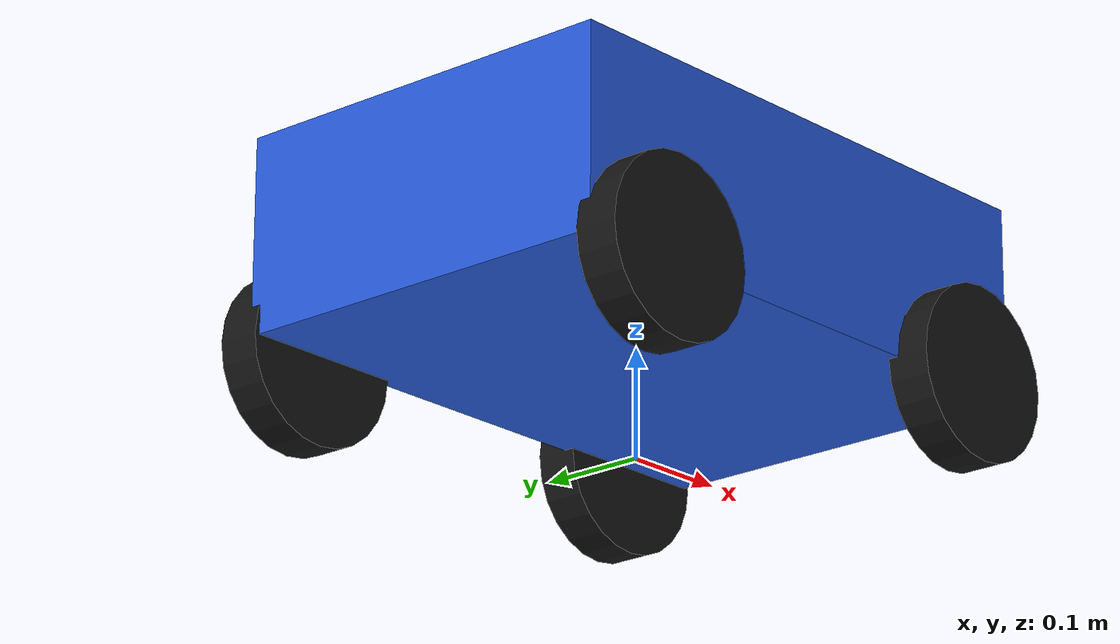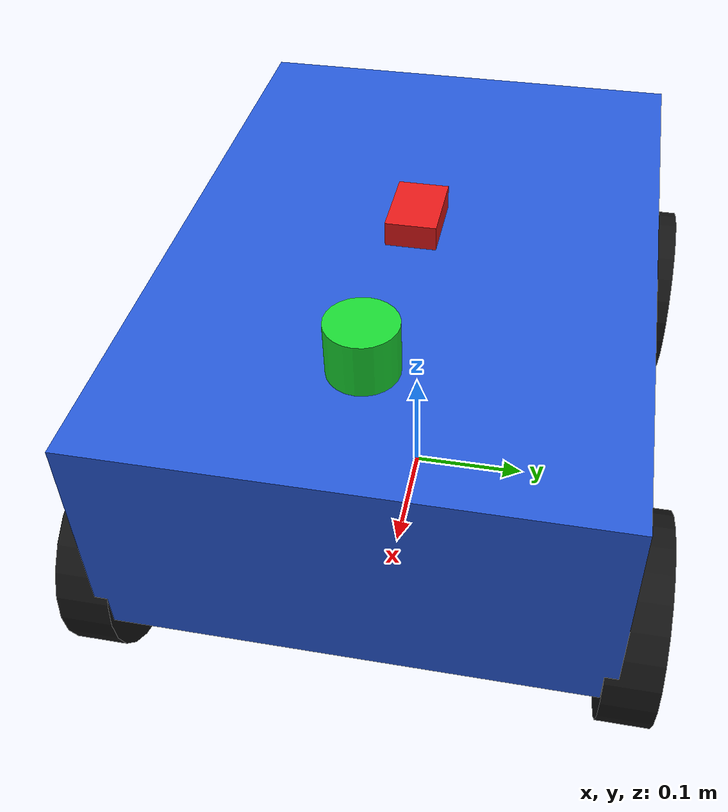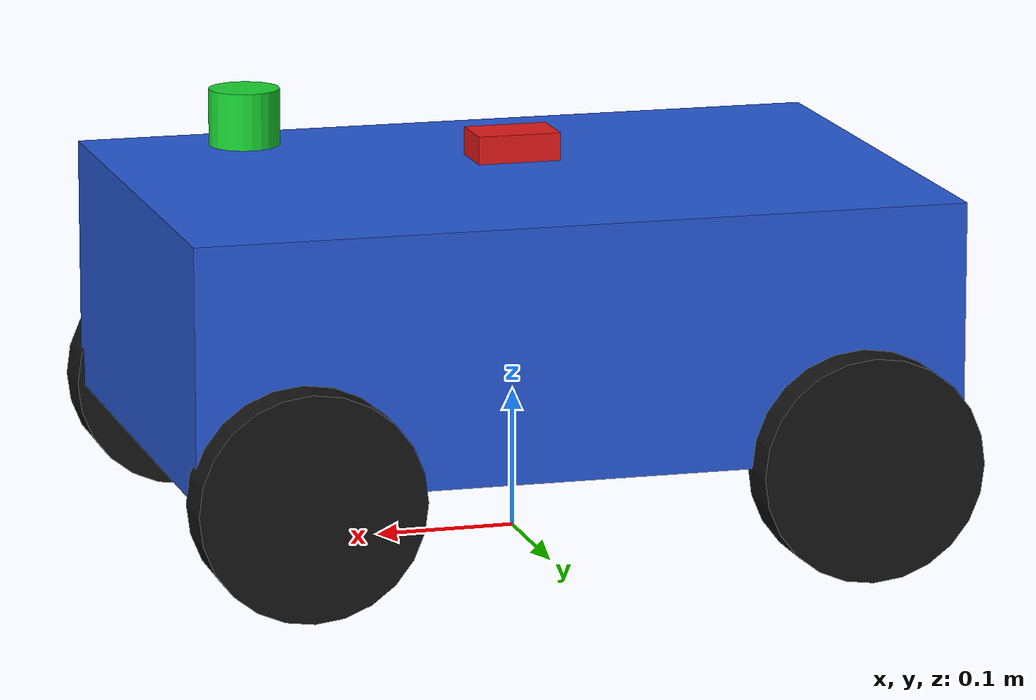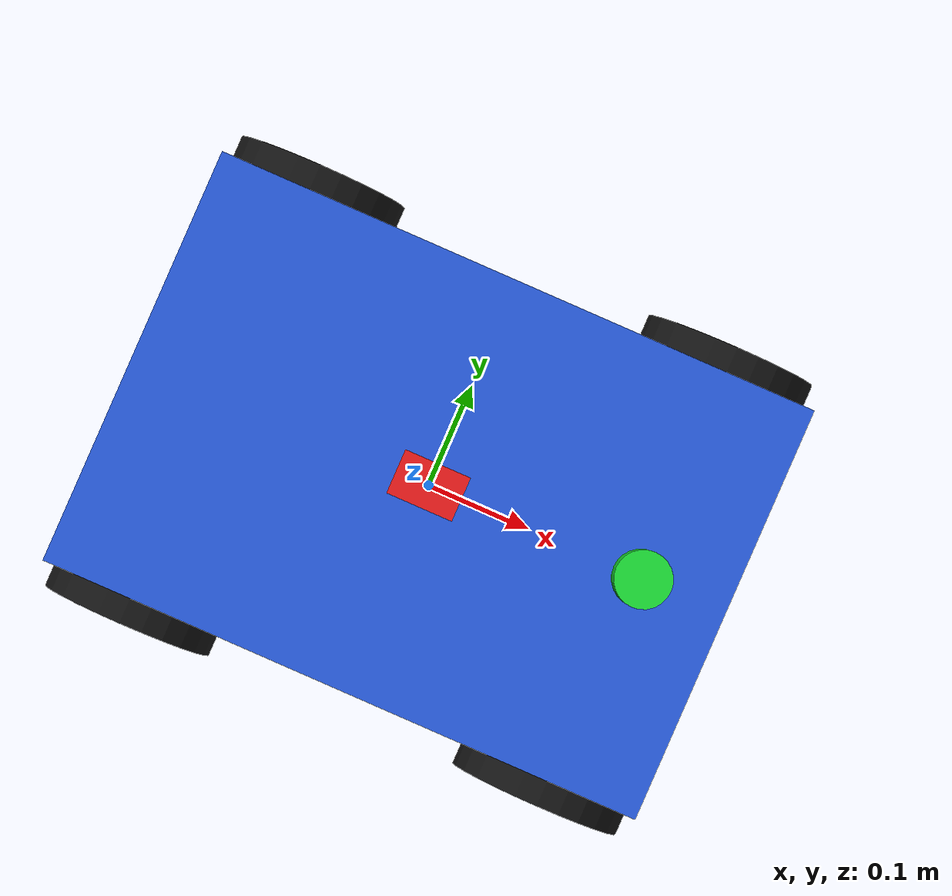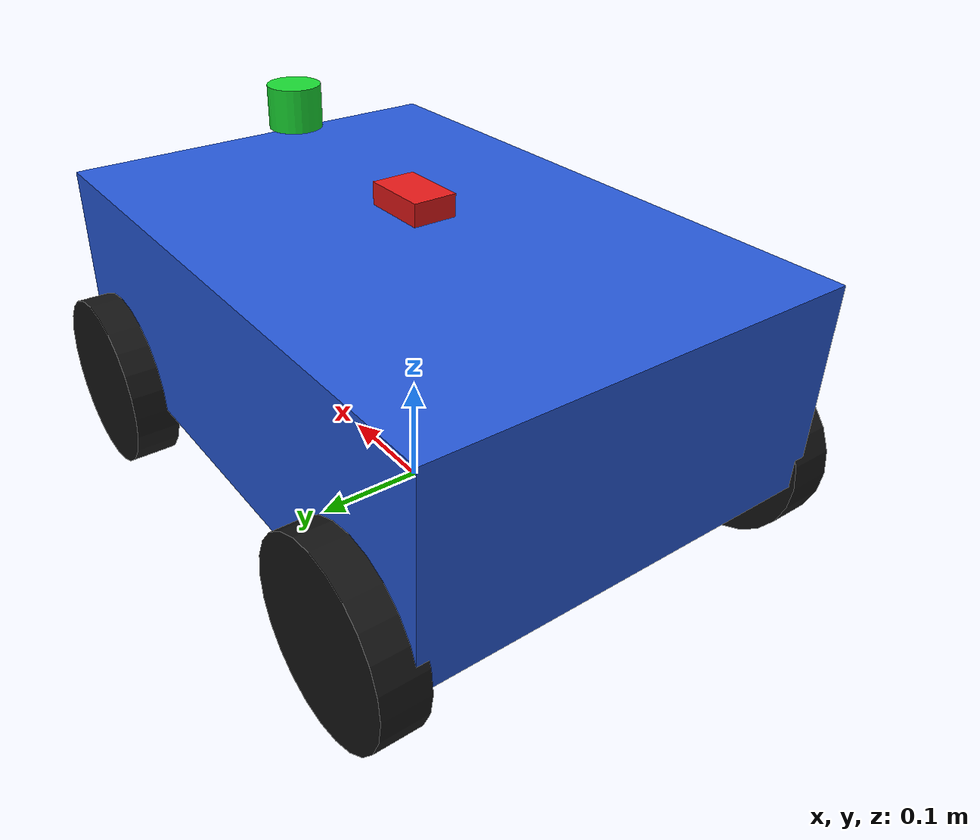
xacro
<?xml version="1.0"?>
<robot xmlns:xacro="http://www.ros.org/wiki/xacro" name="vehicle">

  <xacro:property name="base_length" value="0.55"/>
  <xacro:property name="base_width" value="0.38"/>
  <xacro:property name="base_height" value="0.18"/>
  <xacro:property name="wheel_radius" value="0.08"/>
  <xacro:property name="wheel_width" value="0.04"/>
  <xacro:property name="wheel_y" value="0.20"/>
  <xacro:property name="wheel_x_rear" value="-0.20"/>
  <xacro:property name="wheel_x_front" value="0.20"/>
  <xacro:property name="wheel_z" value="-0.09"/>

  <link name="base_footprint"/>

  <joint name="base_footprint_joint" type="fixed">
    <parent link="base_footprint"/>
    <child link="base_link"/>
    <origin xyz="0 0 ${wheel_radius + base_height / 2.0}" rpy="0 0 0"/>
  </joint>

  <link name="base_link">
    <visual>
      <geometry>
        <box size="${base_length} ${base_width} ${base_height}"/>
      </geometry>
      <material name="blue">
        <color rgba="0.15 0.35 0.85 1"/>
      </material>
    </visual>
    <collision>
      <geometry>
        <box size="${base_length} ${base_width} ${base_height}"/>
      </geometry>
    </collision>
    <inertial>
      <mass value="12"/>
      <inertia ixx="0.12" ixy="0" ixz="0" iyy="0.18" iyz="0" izz="0.22"/>
    </inertial>
  </link>

  <!-- IMU: kırmızı kutu, gövde merkezinde -->
  <link name="imu_link">
    <visual>
      <geometry>
        <box size="0.06 0.04 0.02"/>
      </geometry>
      <material name="red">
        <color rgba="0.9 0.1 0.1 1"/>
      </material>
    </visual>
    <collision>
      <geometry>
        <box size="0.06 0.04 0.02"/>
      </geometry>
    </collision>
    <inertial>
      <mass value="0.05"/>
      <inertia ixx="1e-5" ixy="0" ixz="0" iyy="1e-5" iyz="0" izz="1e-5"/>
    </inertial>
  </link>

  <joint name="imu_joint" type="fixed">
    <parent link="base_link"/>
    <child link="imu_link"/>
    <origin xyz="0 0 ${base_height / 2.0 + 0.02}" rpy="0 0 0"/>
  </joint>

  <!-- GPS anteni: yeşil kutu, tavan önünde -->
  <link name="gps_link">
    <visual>
      <geometry>
        <cylinder radius="0.025" length="0.04"/>
      </geometry>
      <material name="green">
        <color rgba="0.1 0.85 0.2 1"/>
      </material>
    </visual>
    <collision>
      <geometry>
        <cylinder radius="0.025" length="0.04"/>
      </geometry>
    </collision>
    <inertial>
      <mass value="0.03"/>
      <inertia ixx="1e-5" ixy="0" ixz="0" iyy="1e-5" iyz="0" izz="1e-5"/>
    </inertial>
  </link>

  <joint name="gps_joint" type="fixed">
    <parent link="base_link"/>
    <child link="gps_link"/>
    <origin xyz="${base_length / 2.0 - 0.08} 0 ${base_height / 2.0 + 0.05}" rpy="0 0 0"/>
  </joint>

  <xacro:macro name="wheel_link" params="name">
    <link name="${name}">
      <visual>
        <geometry>
          <cylinder radius="${wheel_radius}" length="${wheel_width}"/>
        </geometry>
        <material name="black">
          <color rgba="0.08 0.08 0.08 1"/>
        </material>
      </visual>
      <collision>
        <geometry>
          <cylinder radius="${wheel_radius}" length="${wheel_width}"/>
        </geometry>
      </collision>
      <inertial>
        <mass value="0.8"/>
        <inertia ixx="0.008" ixy="0" ixz="0" iyy="0.008" iyz="0" izz="0.008"/>
      </inertial>
    </link>
  </xacro:macro>

  <xacro:wheel_link name="left_rear_wheel"/>
  <xacro:wheel_link name="right_rear_wheel"/>
  <xacro:wheel_link name="left_front_wheel"/>
  <xacro:wheel_link name="right_front_wheel"/>

  <joint name="left_rear_wheel_joint" type="continuous">
    <parent link="base_link"/>
    <child link="left_rear_wheel"/>
    <origin xyz="${wheel_x_rear} ${wheel_y} ${wheel_z}" rpy="-1.5708 0 0"/>
    <axis xyz="0 0 1"/>
  </joint>

  <joint name="right_rear_wheel_joint" type="continuous">
    <parent link="base_link"/>
    <child link="right_rear_wheel"/>
    <origin xyz="${wheel_x_rear} ${-wheel_y} ${wheel_z}" rpy="-1.5708 0 0"/>
    <axis xyz="0 0 1"/>
  </joint>

  <joint name="left_front_wheel_joint" type="continuous">
    <parent link="base_link"/>
    <child link="left_front_wheel"/>
    <origin xyz="${wheel_x_front} ${wheel_y} ${wheel_z}" rpy="-1.5708 0 0"/>
    <axis xyz="0 0 1"/>
    <mimic joint="left_rear_wheel_joint" multiplier="1" offset="0"/>
  </joint>

  <joint name="right_front_wheel_joint" type="continuous">
    <parent link="base_link"/>
    <child link="right_front_wheel"/>
    <origin xyz="${wheel_x_front} ${-wheel_y} ${wheel_z}" rpy="-1.5708 0 0"/>
    <axis xyz="0 0 1"/>
    <mimic joint="right_rear_wheel_joint" multiplier="1" offset="0"/>
  </joint>

  <gazebo reference="base_link">
    <material>Gazebo/Blue</material>
    <mu1>0.9</mu1>
    <mu2>0.9</mu2>
  </gazebo>

  <gazebo reference="left_rear_wheel">
    <mu1>1.2</mu1>
    <mu2>1.2</mu2>
  </gazebo>
  <gazebo reference="right_rear_wheel">
    <mu1>1.2</mu1>
    <mu2>1.2</mu2>
  </gazebo>
  <!-- Ön tekerlekler tahrikli değil; yüksek sürtünme aracı düz çizer. Kayarak dönsün. -->
  <gazebo reference="left_front_wheel">
    <mu1>0.01</mu1>
    <mu2>0.01</mu2>
    <slip1>1.0</slip1>
    <slip2>1.0</slip2>
  </gazebo>
  <gazebo reference="right_front_wheel">
    <mu1>0.01</mu1>
    <mu2>0.01</mu2>
    <slip1>1.0</slip1>
    <slip2>1.0</slip2>
  </gazebo>

  <gazebo reference="imu_link">
    <material>Gazebo/Red</material>
    <sensor name="imu_sensor" type="imu">
      <always_on>true</always_on>
      <update_rate>100</update_rate>
      <plugin filename="libgazebo_ros_imu_sensor.so" name="imu_plugin">
        <ros>
          <remapping>~/out:=imu</remapping>
        </ros>
        <frame_name>imu_link</frame_name>
        <initial_orientation_as_reference>false</initial_orientation_as_reference>
      </plugin>
    </sensor>
  </gazebo>

  <gazebo reference="gps_link">
    <material>Gazebo/Green</material>
  </gazebo>

  <!-- Arka tekerleklerden diff-drive (ön tekerlekler mimic ile döner) -->
  <gazebo>
    <plugin name="diff_drive" filename="libgazebo_ros_diff_drive.so">
      <ros></ros>
      <update_rate>50</update_rate>
      <left_joint>left_rear_wheel_joint</left_joint>
      <right_joint>right_rear_wheel_joint</right_joint>
      <wheel_separation>${2 * wheel_y}</wheel_separation>
      <wheel_diameter>${2 * wheel_radius}</wheel_diameter>
      <max_wheel_torque>30</max_wheel_torque>
      <max_wheel_acceleration>2.0</max_wheel_acceleration>
      <command_topic>cmd_vel</command_topic>
      <publish_odom>true</publish_odom>
      <publish_odom_tf>true</publish_odom_tf>
      <publish_wheel_tf>false</publish_wheel_tf>
      <odometry_topic>odom</odometry_topic>
      <odometry_frame>odom</odometry_frame>
      <robot_base_frame>base_footprint</robot_base_frame>
    </plugin>
  </gazebo>

  <gazebo>
    <plugin name="joint_state_publisher" filename="libgazebo_ros_joint_state_publisher.so">
      <ros>
        <remapping>~/out:=joint_states</remapping>
      </ros>
      <update_rate>50</update_rate>
      <joint_name>left_rear_wheel_joint</joint_name>
      <joint_name>right_rear_wheel_joint</joint_name>
      <joint_name>left_front_wheel_joint</joint_name>
      <joint_name>right_front_wheel_joint</joint_name>
    </plugin>
  </gazebo>

</robot>
